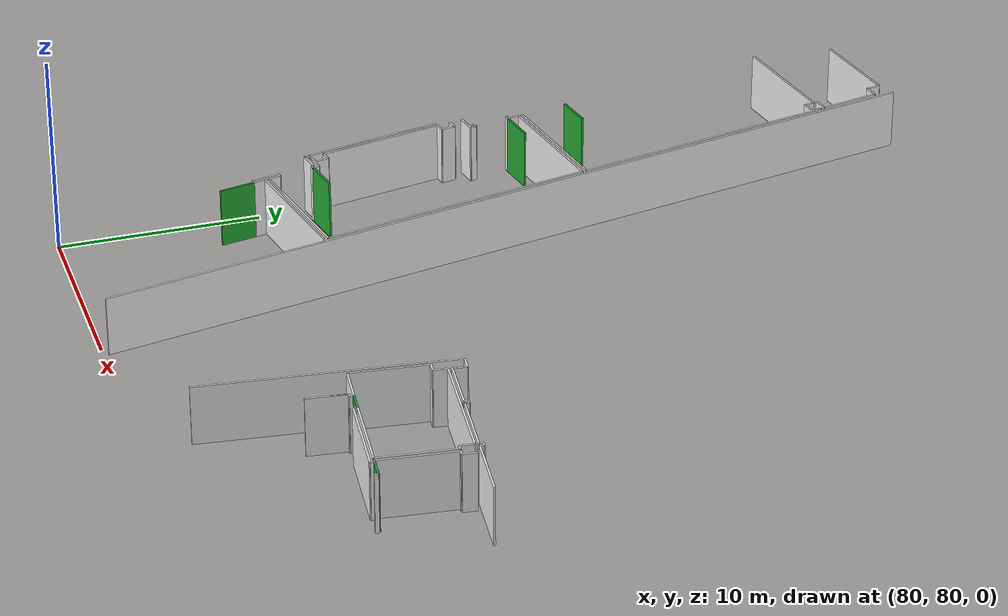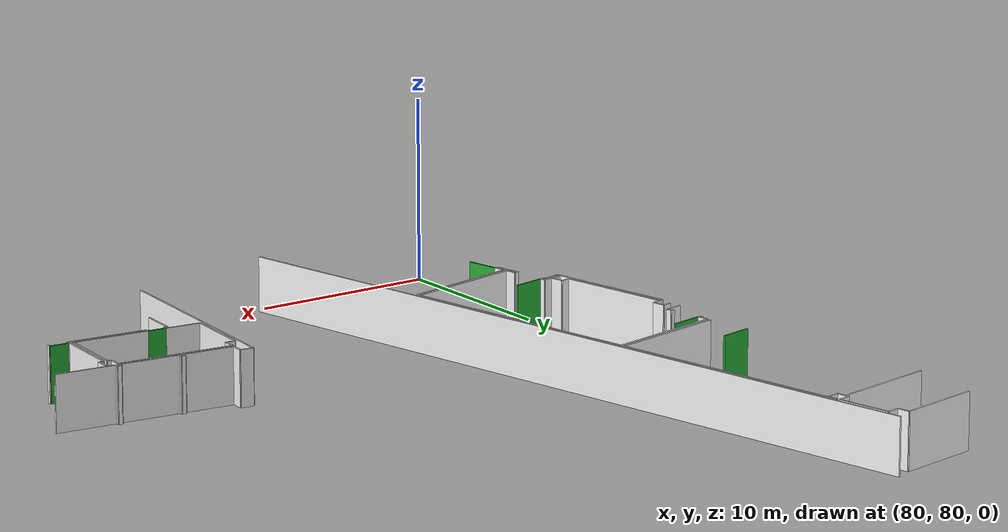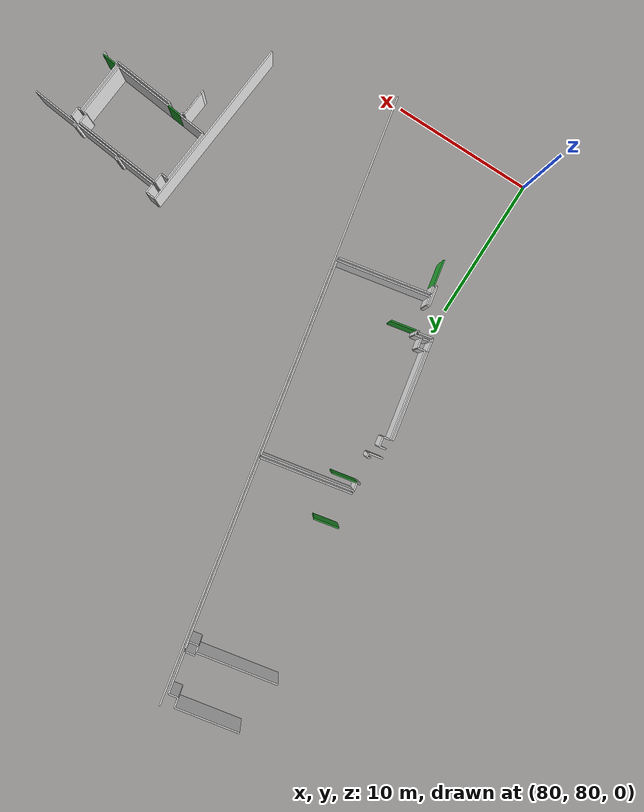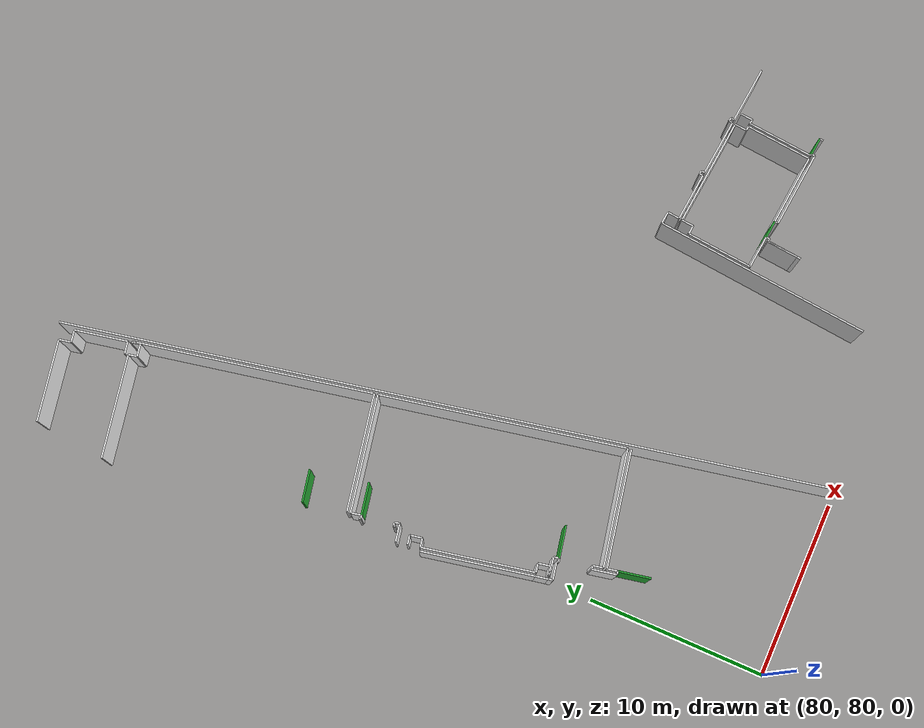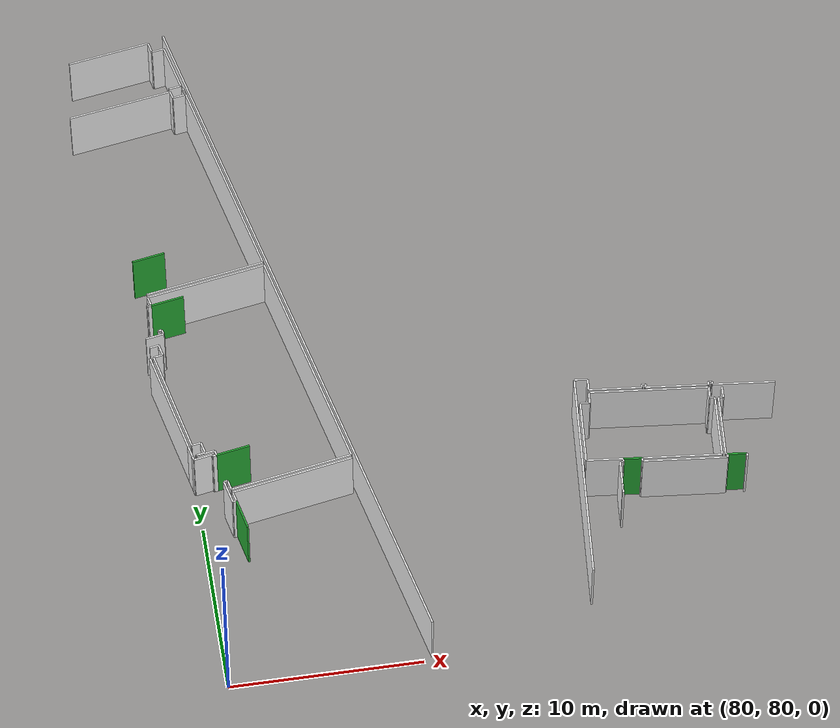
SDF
<sdf version="1.6">
 <world name="default">
  <model name="wall_102.4_88.9_1.5">
   <static>true</static>
   <pose>102.38000000000466 88.94000000017695 1.5 0 0 -0.09966865258337218</pose>
   <link name="link">
    <visual name="visual">
     <geometry><box><size>1.004987562121356 0.1 3</size></box></geometry>
     <material>
      <script><uri>file://media/materials/scripts/gazebo.material</uri><name>Gazebo/Green</name></script>
     </material>
    </visual>
    <collision name="collision"><geometry><box><size>1.004987562121356 0.1 3</size></box></geometry></collision>
   </link>
  </model>
  <model name="wall_107.8_88.4_1.5">
   <static>true</static>
   <pose>107.78999999997905 88.4000000001397 1.5 0 0 -0.09966865258337218</pose>
   <link name="link">
    <visual name="visual">
     <geometry><box><size>1.004987562121356 0.1 3</size></box></geometry>
     <material>
      <script><uri>file://media/materials/scripts/gazebo.material</uri><name>Gazebo/Green</name></script>
     </material>
    </visual>
    <collision name="collision"><geometry><box><size>1.004987562121356 0.1 3</size></box></geometry></collision>
   </link>
  </model>
  <model name="wall_79.3_106.4_1.5">
   <static>true</static>
   <pose>79.26000000012573 106.44999999995343 1.5 0 0 0.20176234422216807</pose>
   <link name="link">
    <visual name="visual">
     <geometry><box><size>1.796440926041953 0.1 3</size></box></geometry>
     <material>
      <script><uri>file://media/materials/scripts/gazebo.material</uri><name>Gazebo/Green</name></script>
     </material>
    </visual>
    <collision name="collision"><geometry><box><size>1.796440926041953 0.1 3</size></box></geometry></collision>
   </link>
  </model>
  <model name="wall_79.9_103.3_1.5">
   <static>true</static>
   <pose>79.88999999989755 103.26499999989755 1.5 0 0 0.19630266418534112</pose>
   <link name="link">
    <visual name="visual">
     <geometry><box><size>1.7944637079858738 0.1 3</size></box></geometry>
     <material>
      <script><uri>file://media/materials/scripts/gazebo.material</uri><name>Gazebo/Green</name></script>
     </material>
    </visual>
    <collision name="collision"><geometry><box><size>1.7944637079858738 0.1 3</size></box></geometry></collision>
   </link>
  </model>
  <model name="wall_82.0_92.7_1.5">
   <static>true</static>
   <pose>82.00000000011642 92.71500000008382 1.5 0 0 0.19630266413472733</pose>
   <link name="link">
    <visual name="visual">
     <geometry><box><size>1.7944637084425918 0.1 3</size></box></geometry>
     <material>
      <script><uri>file://media/materials/scripts/gazebo.material</uri><name>Gazebo/Green</name></script>
     </material>
    </visual>
    <collision name="collision"><geometry><box><size>1.7944637084425918 0.1 3</size></box></geometry></collision>
   </link>
  </model>
  <model name="wall_81.9_88.5_1.5">
   <static>true</static>
   <pose>81.91500000000815 88.53499999991618 1.5 0 0 -1.3755746765469539</pose>
   <link name="link">
    <visual name="visual">
     <geometry><box><size>1.8042727066855455 0.1 3</size></box></geometry>
     <material>
      <script><uri>file://media/materials/scripts/gazebo.material</uri><name>Gazebo/Green</name></script>
     </material>
    </visual>
    <collision name="collision"><geometry><box><size>1.8042727066855455 0.1 3</size></box></geometry></collision>
   </link>
  </model>
  <model name="wall_104.9_88.7_1.5">
   <static>true</static>
   <pose>104.94000000000233 88.68500000005588 1.5 0 0 -0.09918799887508435</pose>
   <link name="link">
    <visual name="visual">
     <geometry><box><size>4.1403502267421555 0.1 3</size></box></geometry>
     <material>
      <script><uri>file://media/materials/scripts/gazebo.material</uri><name>Gazebo/White</name></script>
     </material>
    </visual>
    <collision name="collision"><geometry><box><size>4.1403502267421555 0.1 3</size></box></geometry></collision>
   </link>
  </model>
  <model name="wall_107.2_90.4_1.5">
   <static>true</static>
   <pose>107.19000000000233 90.36499999999069 1.5 0 0 1.4703398593399408</pose>
   <link name="link">
    <visual name="visual">
     <geometry><box><size>3.78910279619648 0.1 3</size></box></geometry>
     <material>
      <script><uri>file://media/materials/scripts/gazebo.material</uri><name>Gazebo/White</name></script>
     </material>
    </visual>
    <collision name="collision"><geometry><box><size>3.78910279619648 0.1 3</size></box></geometry></collision>
   </link>
  </model>
  <model name="wall_107.3_92.3_1.5">
   <static>true</static>
   <pose>107.25500000000466 92.26000000000931 1.5 0 0 3.061762667803524</pose>
   <link name="link">
    <visual name="visual">
     <geometry><box><size>0.25079872408117443 0.1 3</size></box></geometry>
     <material>
      <script><uri>file://media/materials/scripts/gazebo.material</uri><name>Gazebo/White</name></script>
     </material>
    </visual>
    <collision name="collision"><geometry><box><size>0.25079872408117443 0.1 3</size></box></geometry></collision>
   </link>
  </model>
  <model name="wall_107.2_92.6_1.5">
   <static>true</static>
   <pose>107.16500000000815 92.62000000011176 1.5 0 0 1.4711276743202006</pose>
   <link name="link">
    <visual name="visual">
     <geometry><box><size>0.7034912936644975 0.1 3</size></box></geometry>
     <material>
      <script><uri>file://media/materials/scripts/gazebo.material</uri><name>Gazebo/White</name></script>
     </material>
    </visual>
    <collision name="collision"><geometry><box><size>0.7034912936644975 0.1 3</size></box></geometry></collision>
   </link>
  </model>
  <model name="wall_104.1_93.3_1.5">
   <static>true</static>
   <pose>104.05999999999767 93.28500000014901 1.5 0 0 3.041608692913362</pose>
   <link name="link">
    <visual name="visual">
     <geometry><box><size>6.311521211261997 0.1 3</size></box></geometry>
     <material>
      <script><uri>file://media/materials/scripts/gazebo.material</uri><name>Gazebo/White</name></script>
     </material>
    </visual>
    <collision name="collision"><geometry><box><size>6.311521211261997 0.1 3</size></box></geometry></collision>
   </link>
  </model>
  <model name="wall_100.9_93.3_1.5">
   <static>true</static>
   <pose>100.88499999998021 93.25500000012107 1.5 0 0 -1.6718996985493473</pose>
   <link name="link">
    <visual name="visual">
     <geometry><box><size>0.693541635321099 0.1 3</size></box></geometry>
     <material>
      <script><uri>file://media/materials/scripts/gazebo.material</uri><name>Gazebo/White</name></script>
     </material>
    </visual>
    <collision name="collision"><geometry><box><size>0.693541635321099 0.1 3</size></box></geometry></collision>
   </link>
  </model>
  <model name="wall_100.6_92.9_1.5">
   <static>true</static>
   <pose>100.59999999997672 92.93500000005588 1.5 0 0 3.0419240014674718</pose>
   <link name="link">
    <visual name="visual">
     <geometry><box><size>0.5024937810375105 0.1 3</size></box></geometry>
     <material>
      <script><uri>file://media/materials/scripts/gazebo.material</uri><name>Gazebo/White</name></script>
     </material>
    </visual>
    <collision name="collision"><geometry><box><size>0.5024937810375105 0.1 3</size></box></geometry></collision>
   </link>
  </model>
  <model name="wall_100.2_91.1_1.5">
   <static>true</static>
   <pose>100.15999999997439 91.07499999995343 1.5 0 0 -1.6712527942498523</pose>
   <link name="link">
    <visual name="visual">
     <geometry><box><size>3.78910279619648 0.1 3</size></box></geometry>
     <material>
      <script><uri>file://media/materials/scripts/gazebo.material</uri><name>Gazebo/White</name></script>
     </material>
    </visual>
    <collision name="collision"><geometry><box><size>3.78910279619648 0.1 3</size></box></geometry></collision>
   </link>
  </model>
  <model name="wall_100.9_89.1_1.5">
   <static>true</static>
   <pose>100.92499999998836 89.09000000008382 1.5 0 0 -0.10433183097900064</pose>
   <link name="link">
    <visual name="visual">
     <geometry><box><size>1.9204426573091837 0.1 3</size></box></geometry>
     <material>
      <script><uri>file://media/materials/scripts/gazebo.material</uri><name>Gazebo/White</name></script>
     </material>
    </visual>
    <collision name="collision"><geometry><box><size>1.9204426573091837 0.1 3</size></box></geometry></collision>
   </link>
  </model>
  <model name="wall_107.9_92.6_1.5">
   <static>true</static>
   <pose>107.85500000001048 92.55000000004657 1.5 0 0 -1.670464979335457</pose>
   <link name="link">
    <visual name="visual">
     <geometry><box><size>0.7034912932011471 0.1 3</size></box></geometry>
     <material>
      <script><uri>file://media/materials/scripts/gazebo.material</uri><name>Gazebo/White</name></script>
     </material>
    </visual>
    <collision name="collision"><geometry><box><size>0.7034912932011471 0.1 3</size></box></geometry></collision>
   </link>
  </model>
  <model name="wall_107.7_92.2_1.5">
   <static>true</static>
   <pose>107.69500000000698 92.21500000008382 1.5 0 0 3.0221637283793843</pose>
   <link name="link">
    <visual name="visual">
     <geometry><box><size>0.2517935662158716 0.1 3</size></box></geometry>
     <material>
      <script><uri>file://media/materials/scripts/gazebo.material</uri><name>Gazebo/White</name></script>
     </material>
    </visual>
    <collision name="collision"><geometry><box><size>0.2517935662158716 0.1 3</size></box></geometry></collision>
   </link>
  </model>
  <model name="wall_107.4_90.3_1.5">
   <static>true</static>
   <pose>107.38000000000466 90.34499999997206 1.5 0 0 -1.6712527942498523</pose>
   <link name="link">
    <visual name="visual">
     <geometry><box><size>3.78910279619648 0.1 3</size></box></geometry>
     <material>
      <script><uri>file://media/materials/scripts/gazebo.material</uri><name>Gazebo/White</name></script>
     </material>
    </visual>
    <collision name="collision"><geometry><box><size>3.78910279619648 0.1 3</size></box></geometry></collision>
   </link>
  </model>
  <model name="wall_107.2_88.5_1.5">
   <static>true</static>
   <pose>107.23999999999069 88.4550000000745 1.5 0 0 -0.09966865030117082</pose>
   <link name="link">
    <visual name="visual">
     <geometry><box><size>0.10049875616580058 0.1 3</size></box></geometry>
     <material>
      <script><uri>file://media/materials/scripts/gazebo.material</uri><name>Gazebo/White</name></script>
     </material>
    </visual>
    <collision name="collision"><geometry><box><size>0.10049875616580058 0.1 3</size></box></geometry></collision>
   </link>
  </model>
  <model name="wall_101.6_87.9_1.5">
   <static>true</static>
   <pose>101.60000000000582 87.9199999999255 1.5 0 0 1.470015327728778</pose>
   <link name="link">
    <visual name="visual">
     <geometry><box><size>1.789077975082648 0.1 3</size></box></geometry>
     <material>
      <script><uri>file://media/materials/scripts/gazebo.material</uri><name>Gazebo/White</name></script>
     </material>
    </visual>
    <collision name="collision"><geometry><box><size>1.789077975082648 0.1 3</size></box></geometry></collision>
   </link>
  </model>
  <model name="wall_101.8_88.8_1.5">
   <static>true</static>
   <pose>101.77499999999418 88.80000000004657 1.5 0 0 -0.11710874468606086</pose>
   <link name="link">
    <visual name="visual">
     <geometry><box><size>0.1711724276722267 0.1 3</size></box></geometry>
     <material>
      <script><uri>file://media/materials/scripts/gazebo.material</uri><name>Gazebo/White</name></script>
     </material>
    </visual>
    <collision name="collision"><geometry><box><size>0.1711724276722267 0.1 3</size></box></geometry></collision>
   </link>
  </model>
  <model name="wall_101.9_88.9_1.5">
   <static>true</static>
   <pose>101.86999999999534 88.89000000013039 1.5 0 0 1.4711276743037347</pose>
   <link name="link">
    <visual name="visual">
     <geometry><box><size>0.20099751260961132 0.1 3</size></box></geometry>
     <material>
      <script><uri>file://media/materials/scripts/gazebo.material</uri><name>Gazebo/White</name></script>
     </material>
    </visual>
    <collision name="collision"><geometry><box><size>0.20099751260961132 0.1 3</size></box></geometry></collision>
   </link>
  </model>
  <model name="wall_102.9_88.8_1.5">
   <static>true</static>
   <pose>102.86999999999534 88.79000000003725 1.5 0 0 -1.6704649792860586</pose>
   <link name="link">
    <visual name="visual">
     <geometry><box><size>0.20099751260961132 0.1 3</size></box></geometry>
     <material>
      <script><uri>file://media/materials/scripts/gazebo.material</uri><name>Gazebo/White</name></script>
     </material>
    </visual>
    <collision name="collision"><geometry><box><size>0.20099751260961132 0.1 3</size></box></geometry></collision>
   </link>
  </model>
  <model name="wall_105.1_88.5_1.5">
   <static>true</static>
   <pose>105.06500000000233 88.46999999997206 1.5 0 0 -0.099444135193827</pose>
   <link name="link">
    <visual name="visual">
     <geometry><box><size>4.431895756923703 0.1 3</size></box></geometry>
     <material>
      <script><uri>file://media/materials/scripts/gazebo.material</uri><name>Gazebo/White</name></script>
     </material>
    </visual>
    <collision name="collision"><geometry><box><size>4.431895756923703 0.1 3</size></box></geometry></collision>
   </link>
  </model>
  <model name="wall_107.3_88.4_1.5">
   <static>true</static>
   <pose>107.27999999999884 88.35000000009313 1.5 0 0 1.4711276745918913</pose>
   <link name="link">
    <visual name="visual">
     <geometry><box><size>0.20099751260381943 0.1 3</size></box></geometry>
     <material>
      <script><uri>file://media/materials/scripts/gazebo.material</uri><name>Gazebo/White</name></script>
     </material>
    </visual>
    <collision name="collision"><geometry><box><size>0.20099751260381943 0.1 3</size></box></geometry></collision>
   </link>
  </model>
  <model name="wall_108.3_88.2_1.5">
   <static>true</static>
   <pose>108.27999999999884 88.25 1.5 0 0 -1.6704649789979018</pose>
   <link name="link">
    <visual name="visual">
     <geometry><box><size>0.20099751260381943 0.1 3</size></box></geometry>
     <material>
      <script><uri>file://media/materials/scripts/gazebo.material</uri><name>Gazebo/White</name></script>
     </material>
    </visual>
    <collision name="collision"><geometry><box><size>0.20099751260381943 0.1 3</size></box></geometry></collision>
   </link>
  </model>
  <model name="wall_82.1_104.5_1.5">
   <static>true</static>
   <pose>82.07499999998254 104.51499999989755 1.5 0 0 0.1950017882431763</pose>
   <link name="link">
    <visual name="visual">
     <geometry><box><size>6.554220014613294 0.1 3</size></box></geometry>
     <material>
      <script><uri>file://media/materials/scripts/gazebo.material</uri><name>Gazebo/White</name></script>
     </material>
    </visual>
    <collision name="collision"><geometry><box><size>6.554220014613294 0.1 3</size></box></geometry></collision>
   </link>
  </model>
  <model name="wall_84.0_111.8_1.5">
   <static>true</static>
   <pose>83.97000000000116 111.76499999989755 1.5 0 0 1.7677557767697853</pose>
   <link name="link">
    <visual name="visual">
     <geometry><box><size>13.490830219051515 0.1 3</size></box></geometry>
     <material>
      <script><uri>file://media/materials/scripts/gazebo.material</uri><name>Gazebo/White</name></script>
     </material>
    </visual>
    <collision name="collision"><geometry><box><size>13.490830219051515 0.1 3</size></box></geometry></collision>
   </link>
  </model>
  <model name="wall_82.6_118.4_1.5">
   <static>true</static>
   <pose>82.625 118.375 1.5 0 0 -2.944197098217425</pose>
   <link name="link">
    <visual name="visual">
     <geometry><box><size>0.050990195137754324 0.1 3</size></box></geometry>
     <material>
      <script><uri>file://media/materials/scripts/gazebo.material</uri><name>Gazebo/White</name></script>
     </material>
    </visual>
    <collision name="collision">
     <geometry><box><size>0.050990195137754324 0.1 3</size></box></geometry>
    </collision>
   </link>
  </model>
  <model name="wall_82.6_118.1_1.5">
   <static>true</static>
   <pose>82.64999999999418 118.13000000012107 1.5 0 0 -1.3654009375276481</pose>
   <link name="link">
    <visual name="visual">
     <geometry><box><size>0.4903060268741386 0.1 3</size></box></geometry>
     <material>
      <script><uri>file://media/materials/scripts/gazebo.material</uri><name>Gazebo/White</name></script>
     </material>
    </visual>
    <collision name="collision"><geometry><box><size>0.4903060268741386 0.1 3</size></box></geometry></collision>
   </link>
  </model>
  <model name="wall_82.4_117.8_1.5">
   <static>true</static>
   <pose>82.35500000001048 117.82499999995343 1.5 0 0 -2.9553698126839456</pose>
   <link name="link">
    <visual name="visual">
     <geometry><box><size>0.7021395873294909 0.1 3</size></box></geometry>
     <material>
      <script><uri>file://media/materials/scripts/gazebo.material</uri><name>Gazebo/White</name></script>
     </material>
    </visual>
    <collision name="collision"><geometry><box><size>0.7021395873294909 0.1 3</size></box></geometry></collision>
   </link>
  </model>
  <model name="wall_82.0_118.0_1.5">
   <static>true</static>
   <pose>81.95999999999185 118.0 1.5 0 0 1.7761917158684424</pose>
   <link name="link">
    <visual name="visual">
     <geometry><box><size>0.4903060273300119 0.1 3</size></box></geometry>
     <material>
      <script><uri>file://media/materials/scripts/gazebo.material</uri><name>Gazebo/White</name></script>
     </material>
    </visual>
    <collision name="collision"><geometry><box><size>0.4903060273300119 0.1 3</size></box></geometry></collision>
   </link>
  </model>
  <model name="wall_79.1_117.7_1.5">
   <static>true</static>
   <pose>79.06499999997322 117.68000000016764 1.5 0 0 -2.947240709618677</pose>
   <link name="link">
    <visual name="visual">
     <geometry><box><size>5.799180976679107 0.1 3</size></box></geometry>
     <material>
      <script><uri>file://media/materials/scripts/gazebo.material</uri><name>Gazebo/White</name></script>
     </material>
    </visual>
    <collision name="collision"><geometry><box><size>5.799180976679107 0.1 3</size></box></geometry></collision>
   </link>
  </model>
  <model name="wall_79.4_101.2_1.5">
   <static>true</static>
   <pose>79.38999999998487 101.18500000005588 1.5 0 0 -1.3667783472355337</pose>
   <link name="link">
    <visual name="visual">
     <geometry><box><size>0.2961418579352255 0.1 3</size></box></geometry>
     <material>
      <script><uri>file://media/materials/scripts/gazebo.material</uri><name>Gazebo/White</name></script>
     </material>
    </visual>
    <collision name="collision"><geometry><box><size>0.2961418579352255 0.1 3</size></box></geometry></collision>
   </link>
  </model>
  <model name="wall_78.9_100.9_1.5">
   <static>true</static>
   <pose>78.92999999999302 100.94500000006519 1.5 0 0 -2.950090935171577</pose>
   <link name="link">
    <visual name="visual">
     <geometry><box><size>0.9982484660355146 0.1 3</size></box></geometry>
     <material>
      <script><uri>file://media/materials/scripts/gazebo.material</uri><name>Gazebo/White</name></script>
     </material>
    </visual>
    <collision name="collision"><geometry><box><size>0.9982484660355146 0.1 3</size></box></geometry></collision>
   </link>
  </model>
  <model name="wall_78.8_100.3_1.5">
   <static>true</static>
   <pose>78.81500000000233 100.26000000000931 1.5 0 0 0.2013171085608308</pose>
   <link name="link">
    <visual name="visual">
     <geometry><box><size>0.5000999900114971 0.1 3</size></box></geometry>
     <material>
      <script><uri>file://media/materials/scripts/gazebo.material</uri><name>Gazebo/White</name></script>
     </material>
    </visual>
    <collision name="collision"><geometry><box><size>0.5000999900114971 0.1 3</size></box></geometry></collision>
   </link>
  </model>
  <model name="wall_79.1_100.0_1.5">
   <static>true</static>
   <pose>79.125 99.96999999997206 1.5 0 0 -1.3818991459561358</pose>
   <link name="link">
    <visual name="visual">
     <geometry><box><size>0.6923149573923696 0.1 3</size></box></geometry>
     <material>
      <script><uri>file://media/materials/scripts/gazebo.material</uri><name>Gazebo/White</name></script>
     </material>
    </visual>
    <collision name="collision"><geometry><box><size>0.6923149573923696 0.1 3</size></box></geometry></collision>
   </link>
  </model>
  <model name="wall_78.9_99.6_1.5">
   <static>true</static>
   <pose>78.94500000000698 99.57999999984168 1.5 0 0 -2.9402755450289626</pose>
   <link name="link">
    <visual name="visual">
     <geometry><box><size>0.5000999900114971 0.1 3</size></box></geometry>
     <material>
      <script><uri>file://media/materials/scripts/gazebo.material</uri><name>Gazebo/White</name></script>
     </material>
    </visual>
    <collision name="collision"><geometry><box><size>0.5000999900114971 0.1 3</size></box></geometry></collision>
   </link>
  </model>
  <model name="wall_79.3_96.4_1.5">
   <static>true</static>
   <pose>79.31500000000233 96.44999999995343 1.5 0 0 -1.37371297423356</pose>
   <link name="link">
    <visual name="visual">
     <geometry><box><size>6.281600114306311 0.1 3</size></box></geometry>
     <material>
      <script><uri>file://media/materials/scripts/gazebo.material</uri><name>Gazebo/White</name></script>
     </material>
    </visual>
    <collision name="collision"><geometry><box><size>6.281600114306311 0.1 3</size></box></geometry></collision>
   </link>
  </model>
  <model name="wall_80.2_93.4_1.5">
   <static>true</static>
   <pose>80.17499999998836 93.42000000015832 1.5 0 0 0.2013171085608308</pose>
   <link name="link">
    <visual name="visual">
     <geometry><box><size>0.5000999900114971 0.1 3</size></box></geometry>
     <material>
      <script><uri>file://media/materials/scripts/gazebo.material</uri><name>Gazebo/White</name></script>
     </material>
    </visual>
    <collision name="collision"><geometry><box><size>0.5000999900114971 0.1 3</size></box></geometry></collision>
   </link>
  </model>
  <model name="wall_80.5_93.1_1.5">
   <static>true</static>
   <pose>80.48999999999069 93.13000000012107 1.5 0 0 -1.3677511095704145</pose>
   <link name="link">
    <visual name="visual">
     <geometry><box><size>0.6942621984754026 0.1 3</size></box></geometry>
     <material>
      <script><uri>file://media/materials/scripts/gazebo.material</uri><name>Gazebo/White</name></script>
     </material>
    </visual>
    <collision name="collision"><geometry><box><size>0.6942621984754026 0.1 3</size></box></geometry></collision>
   </link>
  </model>
  <model name="wall_80.3_92.7_1.5">
   <static>true</static>
   <pose>80.31500000000233 92.73999999999069 1.5 0 0 -2.9402755450289626</pose>
   <link name="link">
    <visual name="visual">
     <geometry><box><size>0.5000999900114971 0.1 3</size></box></geometry>
     <material>
      <script><uri>file://media/materials/scripts/gazebo.material</uri><name>Gazebo/White</name></script>
     </material>
    </visual>
    <collision name="collision"><geometry><box><size>0.5000999900114971 0.1 3</size></box></geometry></collision>
   </link>
  </model>
  <model name="wall_80.1_92.7_1.5">
   <static>true</static>
   <pose>80.07500000001164 92.66500000003725 1.5 0 0 -1.3734007660495133</pose>
   <link name="link">
    <visual name="visual">
     <geometry><box><size>0.05099019495510694 0.1 3</size></box></geometry>
     <material>
      <script><uri>file://media/materials/scripts/gazebo.material</uri><name>Gazebo/White</name></script>
     </material>
    </visual>
    <collision name="collision"><geometry><box><size>0.05099019495510694 0.1 3</size></box></geometry></collision>
   </link>
  </model>
  <model name="wall_80.6_92.7_1.5">
   <static>true</static>
   <pose>80.57000000000698 92.73999999999069 1.5 0 0 0.20131710810466522</pose>
   <link name="link">
    <visual name="visual">
     <geometry><box><size>1.0001999799298806 0.1 3</size></box></geometry>
     <material>
      <script><uri>file://media/materials/scripts/gazebo.material</uri><name>Gazebo/White</name></script>
     </material>
    </visual>
    <collision name="collision"><geometry><box><size>1.0001999799298806 0.1 3</size></box></geometry></collision>
   </link>
  </model>
  <model name="wall_81.1_92.7_1.5">
   <static>true</static>
   <pose>81.08999999999651 92.68999999994412 1.5 0 0 -1.373400766833078</pose>
   <link name="link">
    <visual name="visual">
     <geometry><box><size>0.3059411706324631 0.1 3</size></box></geometry>
     <material>
      <script><uri>file://media/materials/scripts/gazebo.material</uri><name>Gazebo/White</name></script>
     </material>
    </visual>
    <collision name="collision"><geometry><box><size>0.3059411706324631 0.1 3</size></box></geometry></collision>
   </link>
  </model>
  <model name="wall_81.5_90.5_1.5">
   <static>true</static>
   <pose>81.52999999999884 90.48499999986961 1.5 0 0 -1.3701434493385232</pose>
   <link name="link">
    <visual name="visual">
     <geometry><box><size>0.6020797288042661 0.1 3</size></box></geometry>
     <material>
      <script><uri>file://media/materials/scripts/gazebo.material</uri><name>Gazebo/White</name></script>
     </material>
    </visual>
    <collision name="collision"><geometry><box><size>0.6020797288042661 0.1 3</size></box></geometry></collision>
   </link>
  </model>
  <model name="wall_84.8_90.8_1.5">
   <static>true</static>
   <pose>84.80500000002212 90.8300000000745 1.5 0 0 0.19649816258288277</pose>
   <link name="link">
    <visual name="visual">
     <geometry><box><size>6.556165037625101 0.1 3</size></box></geometry>
     <material>
      <script><uri>file://media/materials/scripts/gazebo.material</uri><name>Gazebo/White</name></script>
     </material>
    </visual>
    <collision name="collision"><geometry><box><size>6.556165037625101 0.1 3</size></box></geometry></collision>
   </link>
  </model>
  <model name="wall_86.7_98.2_1.5">
   <static>true</static>
   <pose>86.67500000001746 98.21000000019558 1.5 0 0 1.7677638655556385</pose>
   <link name="link">
    <visual name="visual">
     <geometry><box><size>13.745781170945156 0.1 3</size></box></geometry>
     <material>
      <script><uri>file://media/materials/scripts/gazebo.material</uri><name>Gazebo/White</name></script>
     </material>
    </visual>
    <collision name="collision"><geometry><box><size>13.745781170945156 0.1 3</size></box></geometry></collision>
   </link>
  </model>
  <model name="wall_82.1_104.3_1.5">
   <static>true</static>
   <pose>82.11000000001513 104.31500000017695 1.5 0 0 -2.9468860624579416</pose>
   <link name="link">
    <visual name="visual">
     <geometry><box><size>6.564030773852092 0.1 3</size></box></geometry>
     <material>
      <script><uri>file://media/materials/scripts/gazebo.material</uri><name>Gazebo/White</name></script>
     </material>
    </visual>
    <collision name="collision"><geometry><box><size>6.564030773852092 0.1 3</size></box></geometry></collision>
   </link>
  </model>
  <model name="wall_79.0_103.4_1.5">
   <static>true</static>
   <pose>78.95000000001164 103.38500000000931 1.5 0 0 -1.370143449587411</pose>
   <link name="link">
    <visual name="visual">
     <geometry><box><size>0.6020797292489833 0.1 3</size></box></geometry>
     <material>
      <script><uri>file://media/materials/scripts/gazebo.material</uri><name>Gazebo/White</name></script>
     </material>
    </visual>
    <collision name="collision"><geometry><box><size>0.6020797292489833 0.1 3</size></box></geometry></collision>
   </link>
  </model>
  <model name="wall_78.9_121.6_1.5">
   <static>true</static>
   <pose>78.89000000001397 121.61499999999069 1.5 0 0 0.19441557721220537</pose>
   <link name="link">
    <visual name="visual">
     <geometry><box><size>4.606788469248449 0.1 3</size></box></geometry>
     <material>
      <script><uri>file://media/materials/scripts/gazebo.material</uri><name>Gazebo/White</name></script>
     </material>
    </visual>
    <collision name="collision"><geometry><box><size>4.606788469248449 0.1 3</size></box></geometry></collision>
   </link>
  </model>
  <model name="wall_81.2_121.7_1.5">
   <static>true</static>
   <pose>81.22000000000116 121.71999999997206 1.5 0 0 -1.3677511096525332</pose>
   <link name="link">
    <visual name="visual">
     <geometry><box><size>0.6942621984636649 0.1 3</size></box></geometry>
     <material>
      <script><uri>file://media/materials/scripts/gazebo.material</uri><name>Gazebo/White</name></script>
     </material>
    </visual>
    <collision name="collision"><geometry><box><size>0.6942621984636649 0.1 3</size></box></geometry></collision>
   </link>
  </model>
  <model name="wall_81.6_121.4_1.5">
   <static>true</static>
   <pose>81.62999999997555 121.44499999983236 1.5 0 0 0.18889718072096112</pose>
   <link name="link">
    <visual name="visual">
     <geometry><box><size>0.6923149571989928 0.1 3</size></box></geometry>
     <material>
      <script><uri>file://media/materials/scripts/gazebo.material</uri><name>Gazebo/White</name></script>
     </material>
    </visual>
    <collision name="collision"><geometry><box><size>0.6923149571989928 0.1 3</size></box></geometry></collision>
   </link>
  </model>
  <model name="wall_82.3_120.0_1.5">
   <static>true</static>
   <pose>82.26499999998487 120.0449999999255 1.5 0 0 -1.3720884317123052</pose>
   <link name="link">
    <visual name="visual">
     <geometry><box><size>2.9888124729202743 0.1 3</size></box></geometry>
     <material>
      <script><uri>file://media/materials/scripts/gazebo.material</uri><name>Gazebo/White</name></script>
     </material>
    </visual>
    <collision name="collision"><geometry><box><size>2.9888124729202743 0.1 3</size></box></geometry></collision>
   </link>
  </model>
  <model name="wall_82.2_118.5_1.5">
   <static>true</static>
   <pose>82.21499999999651 118.51000000000931 1.5 0 0 -2.9414115854430696</pose>
   <link name="link">
    <visual name="visual">
     <geometry><box><size>0.7040596565914858 0.1 3</size></box></geometry>
     <material>
      <script><uri>file://media/materials/scripts/gazebo.material</uri><name>Gazebo/White</name></script>
     </material>
    </visual>
    <collision name="collision"><geometry><box><size>0.7040596565914858 0.1 3</size></box></geometry></collision>
   </link>
  </model>
  <model name="wall_78.8_103.1_1.5">
   <static>true</static>
   <pose>78.80999999999767 103.0999999998603 1.5 0 0 -1.373400766945016</pose>
   <link name="link">
    <visual name="visual">
     <geometry><box><size>0.10198039036683233 0.1 3</size></box></geometry>
     <material>
      <script><uri>file://media/materials/scripts/gazebo.material</uri><name>Gazebo/White</name></script>
     </material>
    </visual>
    <collision name="collision"><geometry><box><size>0.10198039036683233 0.1 3</size></box></geometry></collision>
   </link>
  </model>
  <model name="wall_78.9_103.1_1.5">
   <static>true</static>
   <pose>78.91500000000815 103.06999999983236 1.5 0 0 0.20749622662047904</pose>
   <link name="link">
    <visual name="visual">
     <geometry><box><size>0.19416487839942884 0.1 3</size></box></geometry>
     <material>
      <script><uri>file://media/materials/scripts/gazebo.material</uri><name>Gazebo/White</name></script>
     </material>
    </visual>
    <collision name="collision"><geometry><box><size>0.19416487839942884 0.1 3</size></box></geometry></collision>
   </link>
  </model>
  <model name="wall_79.3_101.3_1.5">
   <static>true</static>
   <pose>79.26499999998487 101.31000000005588 1.5 0 0 -2.9340964269693144</pose>
   <link name="link">
    <visual name="visual">
     <geometry><box><size>0.19416487839942884 0.1 3</size></box></geometry>
     <material>
      <script><uri>file://media/materials/scripts/gazebo.material</uri><name>Gazebo/White</name></script>
     </material>
    </visual>
    <collision name="collision"><geometry><box><size>0.19416487839942884 0.1 3</size></box></geometry></collision>
   </link>
  </model>
  <model name="wall_79.2_101.2_1.5">
   <static>true</static>
   <pose>79.17999999999302 101.24500000011176 1.5 0 0 -1.3521273803731177</pose>
   <link name="link">
    <visual name="visual">
     <geometry><box><size>0.0921954444315063 0.1 3</size></box></geometry>
     <material>
      <script><uri>file://media/materials/scripts/gazebo.material</uri><name>Gazebo/White</name></script>
     </material>
    </visual>
    <collision name="collision"><geometry><box><size>0.0921954444315063 0.1 3</size></box></geometry></collision>
   </link>
  </model>
  <model name="wall_79.1_96.4_1.5">
   <static>true</static>
   <pose>79.11999999999534 96.41000000014901 1.5 0 0 -1.3721523281490677</pose>
   <link name="link">
    <visual name="visual">
     <geometry><box><size>6.283565866752152 0.1 3</size></box></geometry>
     <material>
      <script><uri>file://media/materials/scripts/gazebo.material</uri><name>Gazebo/White</name></script>
     </material>
    </visual>
    <collision name="collision"><geometry><box><size>6.283565866752152 0.1 3</size></box></geometry></collision>
   </link>
  </model>
  <model name="wall_79.8_93.0_1.5">
   <static>true</static>
   <pose>79.80499999999302 92.98999999999069 1.5 0 0 -1.3818991459561358</pose>
   <link name="link">
    <visual name="visual">
     <geometry><box><size>0.6923149573923696 0.1 3</size></box></geometry>
     <material>
      <script><uri>file://media/materials/scripts/gazebo.material</uri><name>Gazebo/White</name></script>
     </material>
    </visual>
    <collision name="collision"><geometry><box><size>0.6923149573923696 0.1 3</size></box></geometry></collision>
   </link>
  </model>
  <model name="wall_79.9_92.5_1.5">
   <static>true</static>
   <pose>79.89499999998952 92.52499999990687 1.5 0 0 -1.373400766989791</pose>
   <link name="link">
    <visual name="visual">
     <geometry><box><size>0.25495097567735614 0.1 3</size></box></geometry>
     <material>
      <script><uri>file://media/materials/scripts/gazebo.material</uri><name>Gazebo/White</name></script>
     </material>
    </visual>
    <collision name="collision"><geometry><box><size>0.25495097567735614 0.1 3</size></box></geometry></collision>
   </link>
  </model>
  <model name="wall_80.4_92.5_1.5">
   <static>true</static>
   <pose>80.41000000000349 92.5 1.5 0 0 0.20131710854919393</pose>
   <link name="link">
    <visual name="visual">
     <geometry><box><size>1.0001999800800263 0.1 3</size></box></geometry>
     <material>
      <script><uri>file://media/materials/scripts/gazebo.material</uri><name>Gazebo/White</name></script>
     </material>
    </visual>
    <collision name="collision"><geometry><box><size>1.0001999800800263 0.1 3</size></box></geometry></collision>
   </link>
  </model>
  <model name="wall_80.9_92.6_1.5">
   <static>true</static>
   <pose>80.91000000000349 92.55000000004657 1.5 0 0 -1.3734007675047049</pose>
   <link name="link">
    <visual name="visual">
     <geometry><box><size>0.10198039035541688 0.1 3</size></box></geometry>
     <material>
      <script><uri>file://media/materials/scripts/gazebo.material</uri><name>Gazebo/White</name></script>
     </material>
    </visual>
    <collision name="collision"><geometry><box><size>0.10198039035541688 0.1 3</size></box></geometry></collision>
   </link>
  </model>
  <model name="wall_81.0_92.5_1.5">
   <static>true</static>
   <pose>81.01999999998952 92.52000000001863 1.5 0 0 0.19739556001778746</pose>
   <link name="link">
    <visual name="visual">
     <geometry><box><size>0.20396078056243275 0.1 3</size></box></geometry>
     <material>
      <script><uri>file://media/materials/scripts/gazebo.material</uri><name>Gazebo/White</name></script>
     </material>
    </visual>
    <collision name="collision"><geometry><box><size>0.20396078056243275 0.1 3</size></box></geometry></collision>
   </link>
  </model>
  <model name="wall_81.4_90.8_1.5">
   <static>true</static>
   <pose>81.36999999999534 90.76000000000931 1.5 0 0 -2.944197095754793</pose>
   <link name="link">
    <visual name="visual">
     <geometry><box><size>0.20396078041403173 0.1 3</size></box></geometry>
     <material>
      <script><uri>file://media/materials/scripts/gazebo.material</uri><name>Gazebo/White</name></script>
     </material>
    </visual>
    <collision name="collision"><geometry><box><size>0.20396078041403173 0.1 3</size></box></geometry></collision>
   </link>
  </model>
  <model name="wall_81.4_90.1_1.5">
   <static>true</static>
   <pose>81.41000000000349 90.06000000005588 1.5 0 0 -1.3677511096114738</pose>
   <link name="link">
    <visual name="visual">
     <geometry><box><size>1.3885243969390675 0.1 3</size></box></geometry>
     <material>
      <script><uri>file://media/materials/scripts/gazebo.material</uri><name>Gazebo/White</name></script>
     </material>
    </visual>
    <collision name="collision"><geometry><box><size>1.3885243969390675 0.1 3</size></box></geometry></collision>
   </link>
  </model>
  <model name="wall_81.6_89.4_1.5">
   <static>true</static>
   <pose>81.64499999998952 89.39999999990687 1.5 0 0 0.20749622662047904</pose>
   <link name="link">
    <visual name="visual">
     <geometry><box><size>0.19416487839942884 0.1 3</size></box></geometry>
     <material>
      <script><uri>file://media/materials/scripts/gazebo.material</uri><name>Gazebo/White</name></script>
     </material>
    </visual>
    <collision name="collision"><geometry><box><size>0.19416487839942884 0.1 3</size></box></geometry></collision>
   </link>
  </model>
  <model name="wall_109.1_93.0_1.5">
   <static>true</static>
   <pose>109.06500000000233 92.95999999996275 1.5 0 0 3.038614747280068</pose>
   <link name="link">
    <visual name="visual">
     <geometry><box><size>3.3075217308649383 0.1 3</size></box></geometry>
     <material>
      <script><uri>file://media/materials/scripts/gazebo.material</uri><name>Gazebo/White</name></script>
     </material>
    </visual>
    <collision name="collision"><geometry><box><size>3.3075217308649383 0.1 3</size></box></geometry></collision>
   </link>
  </model>
  <model name="wall_107.4_93.2_1.5">
   <static>true</static>
   <pose>107.42999999999302 93.2249999998603 1.5 0 0 1.4659193879370842</pose>
   <link name="link">
    <visual name="visual">
     <geometry><box><size>0.19104973169180559 0.1 3</size></box></geometry>
     <material>
      <script><uri>file://media/materials/scripts/gazebo.material</uri><name>Gazebo/White</name></script>
     </material>
    </visual>
    <collision name="collision"><geometry><box><size>0.19104973169180559 0.1 3</size></box></geometry></collision>
   </link>
  </model>
  <model name="wall_107.3_93.3_1.5">
   <static>true</static>
   <pose>107.34500000000116 93.33499999996275 1.5 0 0 2.9849907752705747</pose>
   <link name="link">
    <visual name="visual">
     <geometry><box><size>0.19235384065968367 0.1 3</size></box></geometry>
     <material>
      <script><uri>file://media/materials/scripts/gazebo.material</uri><name>Gazebo/White</name></script>
     </material>
    </visual>
    <collision name="collision"><geometry><box><size>0.19235384065968367 0.1 3</size></box></geometry></collision>
   </link>
  </model>
  <model name="wall_107.2_93.2_1.5">
   <static>true</static>
   <pose>107.23499999998603 93.24500000011176 1.5 0 0 -1.712693381554281</pose>
   <link name="link">
    <visual name="visual">
     <geometry><box><size>0.21213203432303704 0.1 3</size></box></geometry>
     <material>
      <script><uri>file://media/materials/scripts/gazebo.material</uri><name>Gazebo/White</name></script>
     </material>
    </visual>
    <collision name="collision"><geometry><box><size>0.21213203432303704 0.1 3</size></box></geometry></collision>
   </link>
  </model>
  <model name="wall_105.6_93.3_1.5">
   <static>true</static>
   <pose>105.57499999998254 93.31000000005588 1.5 0 0 3.038614747278259</pose>
   <link name="link">
    <visual name="visual">
     <geometry><box><size>3.307521730807039 0.1 3</size></box></geometry>
     <material>
      <script><uri>file://media/materials/scripts/gazebo.material</uri><name>Gazebo/White</name></script>
     </material>
    </visual>
    <collision name="collision"><geometry><box><size>3.307521730807039 0.1 3</size></box></geometry></collision>
   </link>
  </model>
  <model name="wall_103.9_93.6_1.5">
   <static>true</static>
   <pose>103.94500000000698 93.5800000000745 1.5 0 0 1.4219063791853994</pose>
   <link name="link">
    <visual name="visual">
     <geometry><box><size>0.20223748434991518 0.1 3</size></box></geometry>
     <material>
      <script><uri>file://media/materials/scripts/gazebo.material</uri><name>Gazebo/White</name></script>
     </material>
    </visual>
    <collision name="collision"><geometry><box><size>0.20223748434991518 0.1 3</size></box></geometry></collision>
   </link>
  </model>
  <model name="wall_103.9_93.7_1.5">
   <static>true</static>
   <pose>103.86000000001513 93.69000000017695 1.5 0 0 3.0419240010121844</pose>
   <link name="link">
    <visual name="visual">
     <geometry><box><size>0.20099751243585498 0.1 3</size></box></geometry>
     <material>
      <script><uri>file://media/materials/scripts/gazebo.material</uri><name>Gazebo/White</name></script>
     </material>
    </visual>
    <collision name="collision"><geometry><box><size>0.20099751243585498 0.1 3</size></box></geometry></collision>
   </link>
  </model>
  <model name="wall_103.8_93.6_1.5">
   <static>true</static>
   <pose>103.75 93.60000000009313 1.5 0 0 -1.6704649792860586</pose>
   <link name="link">
    <visual name="visual">
     <geometry><box><size>0.20099751260961132 0.1 3</size></box></geometry>
     <material>
      <script><uri>file://media/materials/scripts/gazebo.material</uri><name>Gazebo/White</name></script>
     </material>
    </visual>
    <collision name="collision"><geometry><box><size>0.20099751260961132 0.1 3</size></box></geometry></collision>
   </link>
  </model>
  <model name="wall_102.3_93.6_1.5">
   <static>true</static>
   <pose>102.34500000000116 93.63999999989755 1.5 0 0 3.041569139581511</pose>
   <link name="link">
    <visual name="visual">
     <geometry><box><size>2.804014978520681 0.1 3</size></box></geometry>
     <material>
      <script><uri>file://media/materials/scripts/gazebo.material</uri><name>Gazebo/White</name></script>
     </material>
    </visual>
    <collision name="collision"><geometry><box><size>2.804014978520681 0.1 3</size></box></geometry></collision>
   </link>
  </model>
  <model name="wall_101.0_94.1_1.5">
   <static>true</static>
   <pose>100.98500000001513 94.125 1.5 0 0 1.4696929551082138</pose>
   <link name="link">
    <visual name="visual">
     <geometry><box><size>0.6935416357843824 0.1 3</size></box></geometry>
     <material>
      <script><uri>file://media/materials/scripts/gazebo.material</uri><name>Gazebo/White</name></script>
     </material>
    </visual>
    <collision name="collision"><geometry><box><size>0.6935416357843824 0.1 3</size></box></geometry></collision>
   </link>
  </model>
  <model name="wall_100.7_94.5_1.5">
   <static>true</static>
   <pose>100.6700000000128 94.51000000000931 1.5 0 0 3.0278006469995504</pose>
   <link name="link">
    <visual name="visual">
     <geometry><box><size>0.7045565981194933 0.1 3</size></box></geometry>
     <material>
      <script><uri>file://media/materials/scripts/gazebo.material</uri><name>Gazebo/White</name></script>
     </material>
    </visual>
    <collision name="collision"><geometry><box><size>0.7045565981194933 0.1 3</size></box></geometry></collision>
   </link>
  </model>
  <model name="wall_99.7_88.4_1.5">
   <static>true</static>
   <pose>99.69000000000233 88.375 1.5 0 0 -1.6724688239947545</pose>
   <link name="link">
    <visual name="visual">
     <geometry><box><size>12.414108908448563 0.1 3</size></box></geometry>
     <material>
      <script><uri>file://media/materials/scripts/gazebo.material</uri><name>Gazebo/White</name></script>
     </material>
    </visual>
    <collision name="collision"><geometry><box><size>12.414108908448563 0.1 3</size></box></geometry></collision>
   </link>
  </model>
  <model name="wall_86.2_101.4_1.5">
   <static>true</static>
   <pose>86.25 101.36499999999069 1.5 0 0 1.767599820403571</pose>
   <link name="link">
    <visual name="visual">
     <geometry><box><size>43.061227339674524 0.1 3</size></box></geometry>
     <material>
      <script><uri>file://media/materials/scripts/gazebo.material</uri><name>Gazebo/White</name></script>
     </material>
    </visual>
    <collision name="collision"><geometry><box><size>43.061227339674524 0.1 3</size></box></geometry></collision>
   </link>
  </model>
  <model name="wall_84.8_90.6_1.5">
   <static>true</static>
   <pose>84.83499999999185 90.63500000000931 1.5 0 0 -2.946590865346617</pose>
   <link name="link">
    <visual name="visual">
     <geometry><box><size>6.554220014613294 0.1 3</size></box></geometry>
     <material>
      <script><uri>file://media/materials/scripts/gazebo.material</uri><name>Gazebo/White</name></script>
     </material>
    </visual>
    <collision name="collision"><geometry><box><size>6.554220014613294 0.1 3</size></box></geometry></collision>
   </link>
  </model>
  <model name="wall_81.7_89.7_1.5">
   <static>true</static>
   <pose>81.67999999999302 89.70999999996275 1.5 0 0 -1.3667783472355337</pose>
   <link name="link">
    <visual name="visual">
     <geometry><box><size>0.592283715870451 0.1 3</size></box></geometry>
     <material>
      <script><uri>file://media/materials/scripts/gazebo.material</uri><name>Gazebo/White</name></script>
     </material>
    </visual>
    <collision name="collision"><geometry><box><size>0.592283715870451 0.1 3</size></box></geometry></collision>
   </link>
  </model>
  <model name="wall_101.6_87.8_1.5">
   <static>true</static>
   <pose>101.58999999999651 87.81499999994412 1.5 0 0 1.4706301619123556</pose>
   <link name="link">
    <visual name="visual">
     <geometry><box><size>2.000025000067313 0.1 3</size></box></geometry>
     <material>
      <script><uri>file://media/materials/scripts/gazebo.material</uri><name>Gazebo/White</name></script>
     </material>
    </visual>
    <collision name="collision"><geometry><box><size>2.000025000067313 0.1 3</size></box></geometry></collision>
   </link>
  </model>
 </world>
</sdf>
